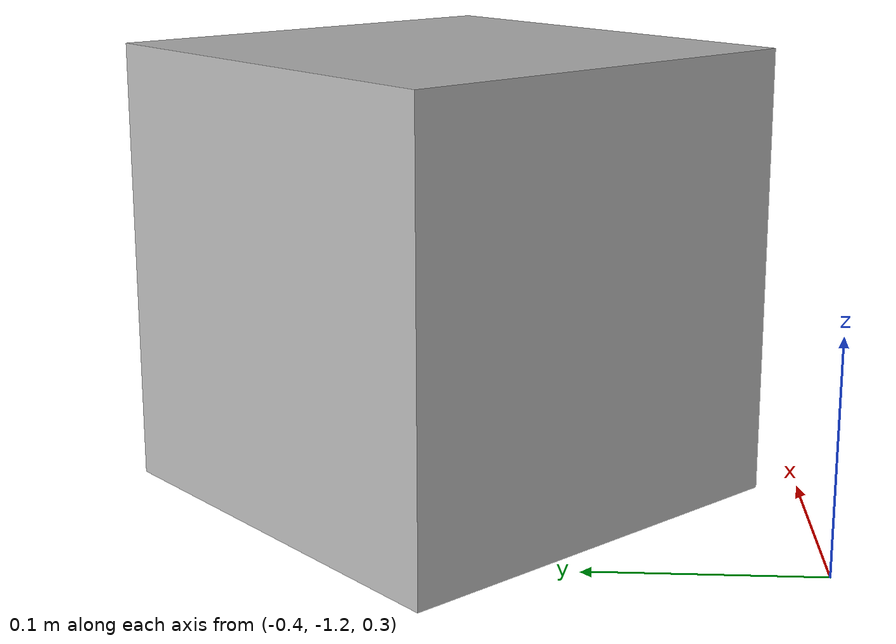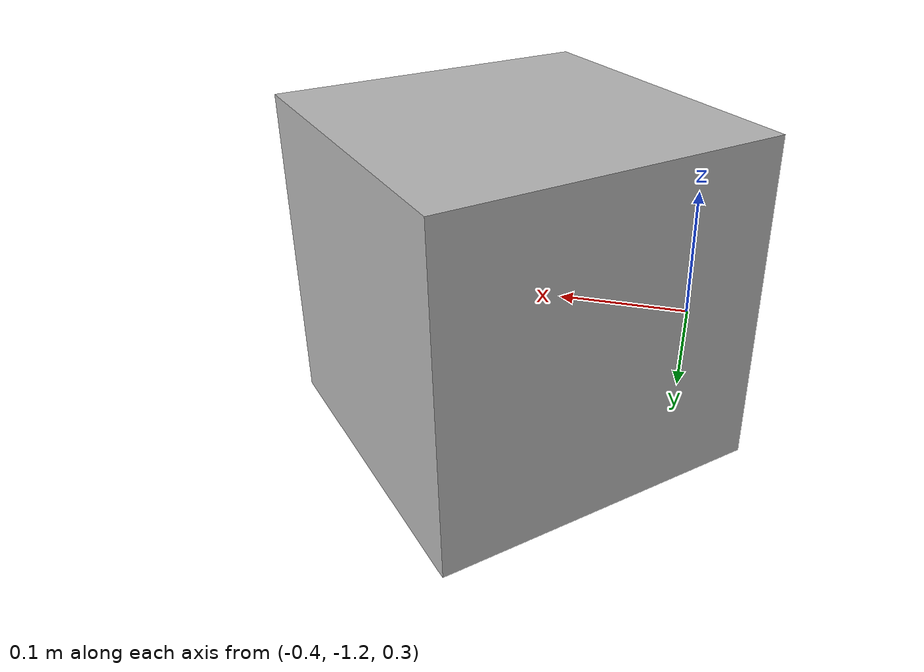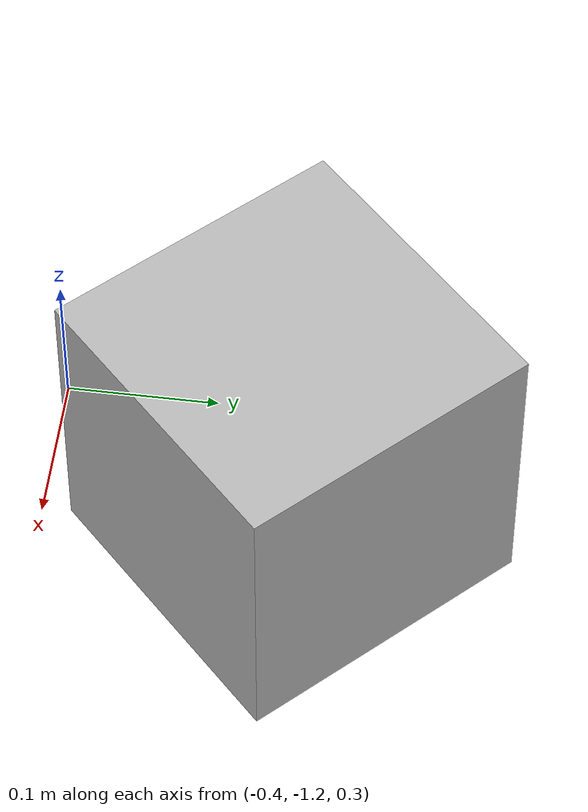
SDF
<?xml version='1.0'?>
  <sdf version='1.6'>
    <model name="Object4">
      <static>false</static>

      <link name='cube'>
        <pose>-.3 -1.04 0.4 0 0 -0.8</pose>

        <collision name='collision'>
          <geometry>
            <box>
              <size>.3 .2 .8</size>
            </box>
          </geometry>
        </collision>

        <surface>
          <friction>
            <ode>
              <mu>1</mu>
              <mu2>1</mu2>
              <slip1>1.0</slip1>
              <slip2>1.0</slip2>
            </ode>
          </friction>
        </surface>

        <visual name='visual'>
          <geometry>
            <box>
              <size>.2 .2 .2</size>
            </box>
          </geometry>
        </visual>
      </link>

    </model>
  </sdf>
